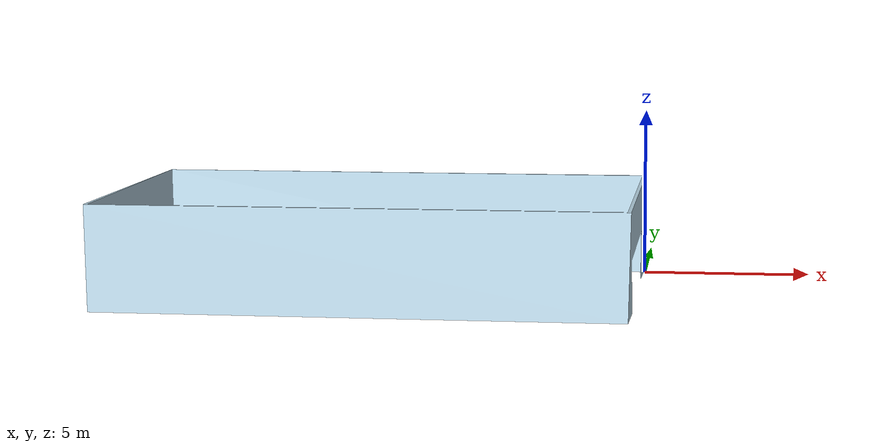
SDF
<?xml version="1.0" ?>
<!-- Generated using onshape-to-robot -->
<!-- Onshape https://cad.onshape.com/documents/e59a5119f90fbd6e9f1333a0/w/d0af061ee81795a88f344743/e/f501fa2de0bf2f30bcb1f673 -->
<sdf version="1.7">
  <model name="warehouse">
    <!-- Link part_20 -->
    <link name="part_20">
      <inertial>
        <pose>-8.00112 -4.5 1.55045 0 0 0</pose>
        <mass>262248</mass>
        <inertia>
          <ixx>4.30425e+06</ixx>
          <ixy>2.31943e-08</ixy>
          <ixz>-105193</ixz>
          <iyy>8.20251e+06</iyy>
          <iyz>5.40949e-10</iyz>
          <izz>1.21147e+07</izz>
        </inertia>
      </inertial>
      <pose>0 0 0 0 -0 0</pose>
      <!-- Part part_20 -->
      <visual name="part_20_visual_mesh_1">
        <pose relative_to="part_20">-7.5 -4.5 0 0 -0 0</pose>
        <geometry>
          <mesh>
            <uri>model://warehouse/assets/part_20.stl</uri>
          </mesh>
        </geometry>
        <material>
          <ambient>0.768627 0.886275 0.952941 1</ambient>
          <diffuse>0.768627 0.886275 0.952941 1</diffuse>
          <specular>0.1 0.1 0.1 1</specular>
          <emissive>0 0 0 0</emissive>
        </material>
      </visual>
      <collision name="part_20_collision_mesh_2">
        <pose relative_to="part_20">-7.5 -4.5 0 0 -0 0</pose>
        <geometry>
          <mesh>
            <uri>model://warehouse/assets/part_20.stl</uri>
          </mesh>
        </geometry>
      </collision>
    </link>
  </model>
</sdf>
